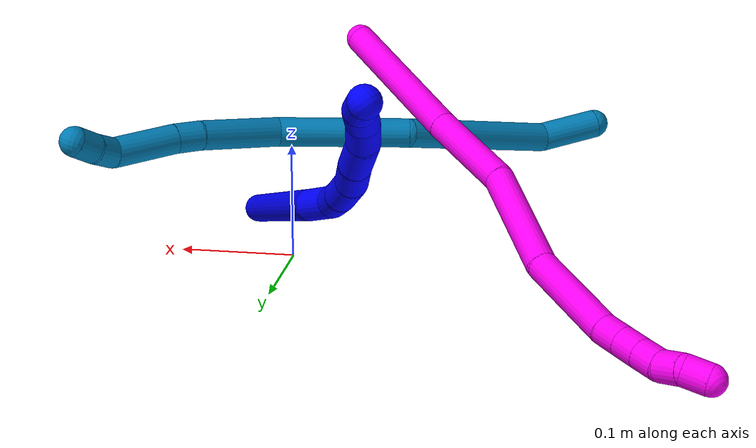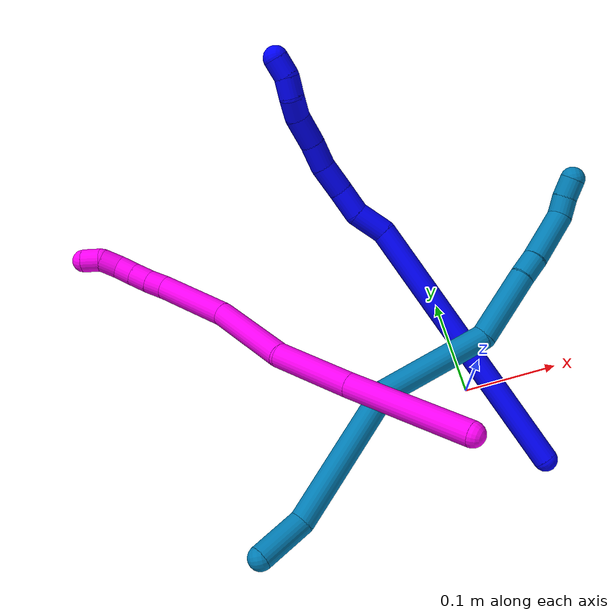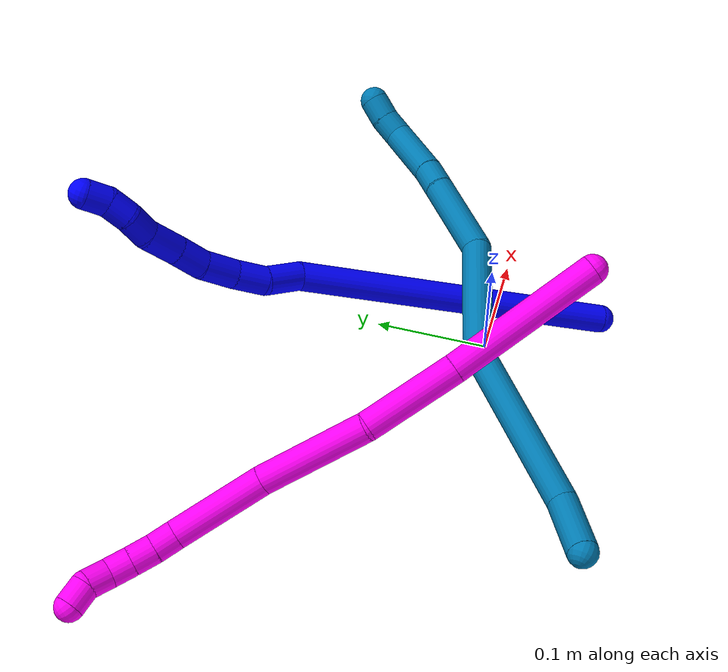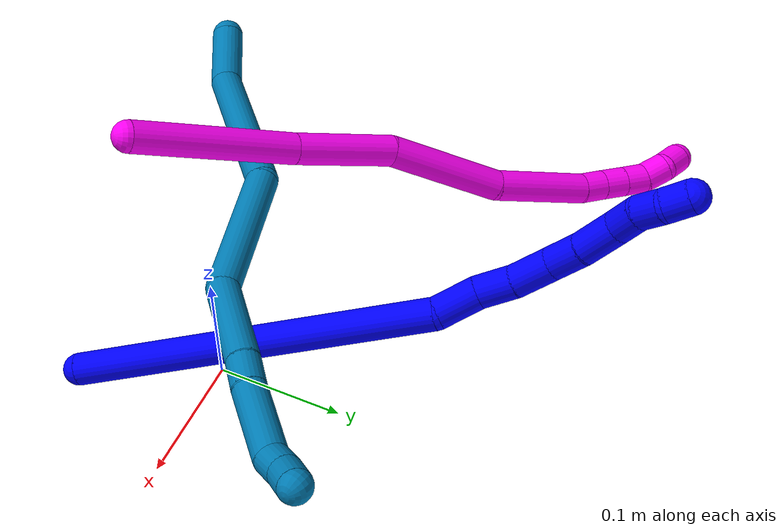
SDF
<sdf version="1.7">
 <world name="default">
  <model name="photoneo_s_sensor">
   <static>1</static>
   <pose>0 0 2 1.57079 1.57079 3.14159</pose>
   <link name="link">
    <inertial><mass>0.1</mass></inertial>
    <sensor name="sensor" type="depth">
     <update_rate>30</update_rate>
     <camera>
      <horizontal_fov>1.22</horizontal_fov>
      <image><width>1920</width><height>1200</height><format>B8G8R8</format></image>
      <clip><near>0.1</near><far>4</far></clip>
      <depth_camera><output>points</output></depth_camera>
     </camera>
     <plugin name="camera_plugin" filename="libgazebo_ros_depth_camera.so">
      <baseline>0.2</baseline>
      <alwaysOn>1</alwaysOn>
      <updateRate>0.0</updateRate>
      <cameraName>camera_ir</cameraName>
      <imageTopicName>/camera/color/image_raw</imageTopicName>
      <cameraInfoTopicName>/camera/color/camera_info</cameraInfoTopicName>
      <depthImageTopicName>/camera/depth/image_raw</depthImageTopicName>
      <depthImageCameraInfoTopicName>/camera/depth/camera_info</depthImageCameraInfoTopicName>
      <pointCloudTopicName>/camera/depth/points</pointCloudTopicName>
      <frameName>fr_optical</frameName>
      <pointCloudCutoff>0.1</pointCloudCutoff>
      <pointCloudCutoffMax>2.0</pointCloudCutoffMax>
      <distortionK1>0</distortionK1>
      <distortionK2>0</distortionK2>
      <distortionK3>0</distortionK3>
      <distortionT1>0</distortionT1>
      <distortionT2>0</distortionT2>
      <CxPrime>0</CxPrime>
      <Cx>0</Cx>
      <Cy>0</Cy>
      <focalLength>0</focalLength>
      <hackBaseline>0</hackBaseline>
     </plugin>
    </sensor>
   </link>
  </model>
  <model name="bin">
   <static>1</static>
   <link name="bottom">
    <collision name="collision-bottom">
     <pose>0 0 -0.01 0 -0 0</pose>
     <geometry><box><size>0.8 0.6 0.02</size></box></geometry>
     <surface>
      <friction><ode><mu>100</mu><mu2>100</mu2></ode></friction>
      <contact><collide_bitmask>65535</collide_bitmask></contact>
     </surface>
    </collision>
   </link>
   <link name="west_wall">
    <collision name="collision-west_wall">
     <pose>-0.41 0 0.1 0 -0 0</pose>
     <geometry><box><size>0.02 0.6 0.2</size></box></geometry>
     <surface>
      <friction><ode><mu>100</mu><mu2>100</mu2></ode></friction>
      <contact><collide_bitmask>65535</collide_bitmask></contact>
     </surface>
    </collision>
   </link>
   <link name="east_wall">
    <collision name="collision-east_wall">
     <pose>0.41 0 0.1 0 -0 0</pose>
     <geometry><box><size>0.02 0.6 0.2</size></box></geometry>
     <surface>
      <friction><ode><mu>100</mu><mu2>100</mu2></ode></friction>
      <contact><collide_bitmask>65535</collide_bitmask></contact>
     </surface>
    </collision>
   </link>
   <link name="south_wall">
    <collision name="collision-south_wall">
     <pose>0 -0.31 0.1 0 -0 0</pose>
     <geometry><box><size>0.8 0.02 0.2</size></box></geometry>
     <surface>
      <friction><ode><mu>100</mu><mu2>100</mu2></ode></friction>
      <contact><collide_bitmask>65535</collide_bitmask></contact>
     </surface>
    </collision>
   </link>
   <link name="north_wall">
    <collision name="collision-north_wall">
     <pose>0 0.31 0.1 0 -0 0</pose>
     <geometry><box><size>0.8 0.02 0.2</size></box></geometry>
     <surface>
      <friction><ode><mu>100</mu><mu2>100</mu2></ode></friction>
      <contact><collide_bitmask>65535</collide_bitmask></contact>
     </surface>
    </collision>
   </link>
  </model>
  <model name="1">
   <static>0</static>
   <link name="1">
    <collision name="collision-cylinder-e_1_1_4">
     <pose>-0.072375 0.121578 0.019388 -1.41266 -0.531449 0.456309</pose>
     <geometry><cylinder><radius>0.0125</radius><length>0.285624</length></cylinder></geometry>
     <surface>
      <friction><ode><mu>1.16</mu><mu2>1.16</mu2><slip1>0</slip1><slip2>0</slip2></ode></friction>
      <contact><ode><kp>1e+06</kp><kd>1</kd><max_vel>0</max_vel><min_depth>0.001</min_depth></ode></contact>
     </surface>
    </collision>
    <visual name="visual-cylinder-e_1_1_4">
     <pose>-0.072375 0.121578 0.019388 -1.41266 -0.531449 0.456309</pose>
     <geometry><cylinder><radius>0.0125</radius><length>0.285624</length></cylinder></geometry>
     <material><ambient>0 0 1 1</ambient></material>
    </visual>
    <collision name="collision-cylinder-e_2_4_5">
     <pose>-0.147457 0.259191 0.043291 -1.29633 -0.161121 0.122132</pose>
     <geometry><cylinder><radius>0.0125</radius><length>0.033753</length></cylinder></geometry>
     <surface>
      <friction><ode><mu>1.16</mu><mu2>1.16</mu2><slip1>0</slip1><slip2>0</slip2></ode></friction>
      <contact><ode><kp>1e+06</kp><kd>1</kd><max_vel>0</max_vel><min_depth>0.001</min_depth></ode></contact>
     </surface>
    </collision>
    <visual name="visual-cylinder-e_2_4_5">
     <pose>-0.147457 0.259191 0.043291 -1.29633 -0.161121 0.122132</pose>
     <geometry><cylinder><radius>0.0125</radius><length>0.033753</length></cylinder></geometry>
     <material><ambient>0 0 1 1</ambient></material>
    </visual>
    <collision name="collision-cylinder-e_3_5_6">
     <pose>-0.156152 0.288277 0.048171 -1.54286 -0.429947 0.418446</pose>
     <geometry><cylinder><radius>0.0125</radius><length>0.028729</length></cylinder></geometry>
     <surface>
      <friction><ode><mu>1.16</mu><mu2>1.16</mu2><slip1>0</slip1><slip2>0</slip2></ode></friction>
      <contact><ode><kp>1e+06</kp><kd>1</kd><max_vel>0</max_vel><min_depth>0.001</min_depth></ode></contact>
     </surface>
    </collision>
    <visual name="visual-cylinder-e_3_5_6">
     <pose>-0.156152 0.288277 0.048171 -1.54286 -0.429947 0.418446</pose>
     <geometry><cylinder><radius>0.0125</radius><length>0.028729</length></cylinder></geometry>
     <material><ambient>0 0 1 1</ambient></material>
    </visual>
    <collision name="collision-cylinder-e_4_6_7">
     <pose>-0.166821 0.316141 0.047307 -1.65355 -0.305166 0.331065</pose>
     <geometry><cylinder><radius>0.0125</radius><length>0.031165</length></cylinder></geometry>
     <surface>
      <friction><ode><mu>1.16</mu><mu2>1.16</mu2><slip1>0</slip1><slip2>0</slip2></ode></friction>
      <contact><ode><kp>1e+06</kp><kd>1</kd><max_vel>0</max_vel><min_depth>0.001</min_depth></ode></contact>
     </surface>
    </collision>
    <visual name="visual-cylinder-e_4_6_7">
     <pose>-0.166821 0.316141 0.047307 -1.65355 -0.305166 0.331065</pose>
     <geometry><cylinder><radius>0.0125</radius><length>0.031165</length></cylinder></geometry>
     <material><ambient>0 0 1 1</ambient></material>
    </visual>
    <collision name="collision-cylinder-e_5_7_8">
     <pose>-0.176123 0.342845 0.042401 -1.8707 -0.355399 0.477741</pose>
     <geometry><cylinder><radius>0.0125</radius><length>0.026556</length></cylinder></geometry>
     <surface>
      <friction><ode><mu>1.16</mu><mu2>1.16</mu2><slip1>0</slip1><slip2>0</slip2></ode></friction>
      <contact><ode><kp>1e+06</kp><kd>1</kd><max_vel>0</max_vel><min_depth>0.001</min_depth></ode></contact>
     </surface>
    </collision>
    <visual name="visual-cylinder-e_5_7_8">
     <pose>-0.176123 0.342845 0.042401 -1.8707 -0.355399 0.477741</pose>
     <geometry><cylinder><radius>0.0125</radius><length>0.026556</length></cylinder></geometry>
     <material><ambient>0 0 1 1</ambient></material>
    </visual>
    <collision name="collision-cylinder-e_6_8_9">
     <pose>-0.184571 0.369405 0.034535 -1.84896 -0.245862 0.32467</pose>
     <geometry><cylinder><radius>0.0125</radius><length>0.031454</length></cylinder></geometry>
     <surface>
      <friction><ode><mu>1.16</mu><mu2>1.16</mu2><slip1>0</slip1><slip2>0</slip2></ode></friction>
      <contact><ode><kp>1e+06</kp><kd>1</kd><max_vel>0</max_vel><min_depth>0.001</min_depth></ode></contact>
     </surface>
    </collision>
    <visual name="visual-cylinder-e_6_8_9">
     <pose>-0.184571 0.369405 0.034535 -1.84896 -0.245862 0.32467</pose>
     <geometry><cylinder><radius>0.0125</radius><length>0.031454</length></cylinder></geometry>
     <material><ambient>0 0 1 1</ambient></material>
    </visual>
    <collision name="collision-cylinder-e_7_9_10">
     <pose>-0.191551 0.393134 0.024973 -2.10607 -0.290761 0.503203</pose>
     <geometry><cylinder><radius>0.0125</radius><length>0.021992</length></cylinder></geometry>
     <surface>
      <friction><ode><mu>1.16</mu><mu2>1.16</mu2><slip1>0</slip1><slip2>0</slip2></ode></friction>
      <contact><ode><kp>1e+06</kp><kd>1</kd><max_vel>0</max_vel><min_depth>0.001</min_depth></ode></contact>
     </surface>
    </collision>
    <visual name="visual-cylinder-e_7_9_10">
     <pose>-0.191551 0.393134 0.024973 -2.10607 -0.290761 0.503203</pose>
     <geometry><cylinder><radius>0.0125</radius><length>0.021992</length></cylinder></geometry>
     <material><ambient>0 0 1 1</ambient></material>
    </visual>
    <collision name="collision-cylinder-e_8_10_11">
     <pose>-0.20004 0.410241 0.016055 -1.98582 -0.545467 0.810323</pose>
     <geometry><cylinder><radius>0.0125</radius><length>0.020571</length></cylinder></geometry>
     <surface>
      <friction><ode><mu>1.16</mu><mu2>1.16</mu2><slip1>0</slip1><slip2>0</slip2></ode></friction>
      <contact><ode><kp>1e+06</kp><kd>1</kd><max_vel>0</max_vel><min_depth>0.001</min_depth></ode></contact>
     </surface>
    </collision>
    <visual name="visual-cylinder-e_8_10_11">
     <pose>-0.20004 0.410241 0.016055 -1.98582 -0.545467 0.810323</pose>
     <geometry><cylinder><radius>0.0125</radius><length>0.020571</length></cylinder></geometry>
     <material><ambient>0 0 1 1</ambient></material>
    </visual>
    <collision name="collision-cylinder-e_9_11_2">
     <pose>-0.209674 0.427384 0.011907 -1.63696 -0.440567 0.469663</pose>
     <geometry><cylinder><radius>0.0125</radius><length>0.020157</length></cylinder></geometry>
     <surface>
      <friction><ode><mu>1.16</mu><mu2>1.16</mu2><slip1>0</slip1><slip2>0</slip2></ode></friction>
      <contact><ode><kp>1e+06</kp><kd>1</kd><max_vel>0</max_vel><min_depth>0.001</min_depth></ode></contact>
     </surface>
    </collision>
    <visual name="visual-cylinder-e_9_11_2">
     <pose>-0.209674 0.427384 0.011907 -1.63696 -0.440567 0.469663</pose>
     <geometry><cylinder><radius>0.0125</radius><length>0.020157</length></cylinder></geometry>
     <material><ambient>0 0 1 1</ambient></material>
    </visual>
    <collision name="collision-sphere-2">
     <pose>-0.213972 0.43648 0.011304 0 -0 0</pose>
     <geometry><sphere><radius>0.0125</radius></sphere></geometry>
     <surface>
      <friction><ode><mu>1.16</mu><mu2>1.16</mu2><slip1>0</slip1><slip2>0</slip2></ode></friction>
      <contact><ode><kp>1e+06</kp><kd>1</kd><max_vel>0</max_vel><min_depth>0.001</min_depth></ode></contact>
     </surface>
    </collision>
    <visual name="visual-sphere-2">
     <pose>-0.213972 0.43648 0.011304 0 -0 0</pose>
     <geometry><sphere><radius>0.0125</radius></sphere></geometry>
     <material><ambient>0 0 1 1</ambient></material>
    </visual>
    <collision name="collision-sphere-11">
     <pose>-0.205376 0.418288 0.012509 0 -0 0</pose>
     <geometry><sphere><radius>0.0125</radius></sphere></geometry>
     <surface>
      <friction><ode><mu>1.16</mu><mu2>1.16</mu2><slip1>0</slip1><slip2>0</slip2></ode></friction>
      <contact><ode><kp>1e+06</kp><kd>1</kd><max_vel>0</max_vel><min_depth>0.001</min_depth></ode></contact>
     </surface>
    </collision>
    <visual name="visual-sphere-11">
     <pose>-0.205376 0.418288 0.012509 0 -0 0</pose>
     <geometry><sphere><radius>0.0125</radius></sphere></geometry>
     <material><ambient>0 0 1 1</ambient></material>
    </visual>
    <collision name="collision-sphere-10">
     <pose>-0.194704 0.402195 0.0196 0 -0 0</pose>
     <geometry><sphere><radius>0.0125</radius></sphere></geometry>
     <surface>
      <friction><ode><mu>1.16</mu><mu2>1.16</mu2><slip1>0</slip1><slip2>0</slip2></ode></friction>
      <contact><ode><kp>1e+06</kp><kd>1</kd><max_vel>0</max_vel><min_depth>0.001</min_depth></ode></contact>
     </surface>
    </collision>
    <visual name="visual-sphere-10">
     <pose>-0.194704 0.402195 0.0196 0 -0 0</pose>
     <geometry><sphere><radius>0.0125</radius></sphere></geometry>
     <material><ambient>0 0 1 1</ambient></material>
    </visual>
    <collision name="collision-sphere-9">
     <pose>-0.188399 0.384073 0.030347 0 -0 0</pose>
     <geometry><sphere><radius>0.0125</radius></sphere></geometry>
     <surface>
      <friction><ode><mu>1.16</mu><mu2>1.16</mu2><slip1>0</slip1><slip2>0</slip2></ode></friction>
      <contact><ode><kp>1e+06</kp><kd>1</kd><max_vel>0</max_vel><min_depth>0.001</min_depth></ode></contact>
     </surface>
    </collision>
    <visual name="visual-sphere-9">
     <pose>-0.188399 0.384073 0.030347 0 -0 0</pose>
     <geometry><sphere><radius>0.0125</radius></sphere></geometry>
     <material><ambient>0 0 1 1</ambient></material>
    </visual>
    <collision name="collision-sphere-4">
     <pose>-0.144749 0.243156 0.038777 0 -0 0</pose>
     <geometry><sphere><radius>0.0125</radius></sphere></geometry>
     <surface>
      <friction><ode><mu>1.16</mu><mu2>1.16</mu2><slip1>0</slip1><slip2>0</slip2></ode></friction>
      <contact><ode><kp>1e+06</kp><kd>1</kd><max_vel>0</max_vel><min_depth>0.001</min_depth></ode></contact>
     </surface>
    </collision>
    <visual name="visual-sphere-4">
     <pose>-0.144749 0.243156 0.038777 0 -0 0</pose>
     <geometry><sphere><radius>0.0125</radius></sphere></geometry>
     <material><ambient>0 0 1 1</ambient></material>
    </visual>
    <collision name="collision-sphere-1">
     <geometry><sphere><radius>0.0125</radius></sphere></geometry>
     <surface>
      <friction><ode><mu>1.16</mu><mu2>1.16</mu2><slip1>0</slip1><slip2>0</slip2></ode></friction>
      <contact><ode><kp>1e+06</kp><kd>1</kd><max_vel>0</max_vel><min_depth>0.001</min_depth></ode></contact>
     </surface>
    </collision>
    <visual name="visual-sphere-1">
     <geometry><sphere><radius>0.0125</radius></sphere></geometry>
     <material><ambient>0 0 1 1</ambient></material>
    </visual>
    <collision name="collision-sphere-8">
     <pose>-0.180743 0.354738 0.038724 0 -0 0</pose>
     <geometry><sphere><radius>0.0125</radius></sphere></geometry>
     <surface>
      <friction><ode><mu>1.16</mu><mu2>1.16</mu2><slip1>0</slip1><slip2>0</slip2></ode></friction>
      <contact><ode><kp>1e+06</kp><kd>1</kd><max_vel>0</max_vel><min_depth>0.001</min_depth></ode></contact>
     </surface>
    </collision>
    <visual name="visual-sphere-8">
     <pose>-0.180743 0.354738 0.038724 0 -0 0</pose>
     <geometry><sphere><radius>0.0125</radius></sphere></geometry>
     <material><ambient>0 0 1 1</ambient></material>
    </visual>
    <collision name="collision-sphere-5">
     <pose>-0.150164 0.275225 0.047806 0 -0 0</pose>
     <geometry><sphere><radius>0.0125</radius></sphere></geometry>
     <surface>
      <friction><ode><mu>1.16</mu><mu2>1.16</mu2><slip1>0</slip1><slip2>0</slip2></ode></friction>
      <contact><ode><kp>1e+06</kp><kd>1</kd><max_vel>0</max_vel><min_depth>0.001</min_depth></ode></contact>
     </surface>
    </collision>
    <visual name="visual-sphere-5">
     <pose>-0.150164 0.275225 0.047806 0 -0 0</pose>
     <geometry><sphere><radius>0.0125</radius></sphere></geometry>
     <material><ambient>0 0 1 1</ambient></material>
    </visual>
    <collision name="collision-sphere-6">
     <pose>-0.162139 0.30133 0.048536 0 -0 0</pose>
     <geometry><sphere><radius>0.0125</radius></sphere></geometry>
     <surface>
      <friction><ode><mu>1.16</mu><mu2>1.16</mu2><slip1>0</slip1><slip2>0</slip2></ode></friction>
      <contact><ode><kp>1e+06</kp><kd>1</kd><max_vel>0</max_vel><min_depth>0.001</min_depth></ode></contact>
     </surface>
    </collision>
    <visual name="visual-sphere-6">
     <pose>-0.162139 0.30133 0.048536 0 -0 0</pose>
     <geometry><sphere><radius>0.0125</radius></sphere></geometry>
     <material><ambient>0 0 1 1</ambient></material>
    </visual>
    <collision name="collision-sphere-7">
     <pose>-0.171503 0.330953 0.046079 0 -0 0</pose>
     <geometry><sphere><radius>0.0125</radius></sphere></geometry>
     <surface>
      <friction><ode><mu>1.16</mu><mu2>1.16</mu2><slip1>0</slip1><slip2>0</slip2></ode></friction>
      <contact><ode><kp>1e+06</kp><kd>1</kd><max_vel>0</max_vel><min_depth>0.001</min_depth></ode></contact>
     </surface>
    </collision>
    <visual name="visual-sphere-7">
     <pose>-0.171503 0.330953 0.046079 0 -0 0</pose>
     <geometry><sphere><radius>0.0125</radius></sphere></geometry>
     <material><ambient>0 0 1 1</ambient></material>
    </visual>
    <inertial>
     <pose>-0.116741 0.216063 0.026378 0 -0 0</pose>
     <mass>0.5</mass>
     <inertia>
      <ixx>0.002264</ixx>
      <ixy>0</ixy>
      <ixz>0</ixz>
      <iyy>0.001491</iyy>
      <iyz>0</iyz>
      <izz>-0.000686</izz>
     </inertia>
    </inertial>
   </link>
   <pose>0.051925 -0.095029 0.011478 2.50483 -0.176427 -2.13163</pose>
  </model>
  <model name="9">
   <static>0</static>
   <link name="9">
    <collision name="collision-cylinder-e_1_1_4">
     <pose>0.017191 0.000279 0.019401 -0.014361 0.725044 -0.005447</pose>
     <geometry><cylinder><radius>0.0125</radius><length>0.051846</length></cylinder></geometry>
     <surface>
      <friction><ode><mu>1.16</mu><mu2>1.16</mu2><slip1>0</slip1><slip2>0</slip2></ode></friction>
      <contact><ode><kp>1e+06</kp><kd>1</kd><max_vel>0</max_vel><min_depth>0.001</min_depth></ode></contact>
     </surface>
    </collision>
    <visual name="visual-cylinder-e_1_1_4">
     <pose>0.017191 0.000279 0.019401 -0.014361 0.725044 -0.005447</pose>
     <geometry><cylinder><radius>0.0125</radius><length>0.051846</length></cylinder></geometry>
     <material><ambient>0 0.490196 0.709804 1</ambient></material>
    </visual>
    <collision name="collision-cylinder-e_2_4_5">
     <pose>0.078442 0.030012 0.087162 -0.54706 0.661237 -0.191995</pose>
     <geometry><cylinder><radius>0.0125</radius><length>0.143492</length></cylinder></geometry>
     <surface>
      <friction><ode><mu>1.16</mu><mu2>1.16</mu2><slip1>0</slip1><slip2>0</slip2></ode></friction>
      <contact><ode><kp>1e+06</kp><kd>1</kd><max_vel>0</max_vel><min_depth>0.001</min_depth></ode></contact>
     </surface>
    </collision>
    <visual name="visual-cylinder-e_2_4_5">
     <pose>0.078442 0.030012 0.087162 -0.54706 0.661237 -0.191995</pose>
     <geometry><cylinder><radius>0.0125</radius><length>0.143492</length></cylinder></geometry>
     <material><ambient>0 0.490196 0.709804 1</ambient></material>
    </visual>
    <collision name="collision-cylinder-e_3_5_6">
     <pose>0.145587 0.061649 0.186639 -0.042663 0.423878 -0.009181</pose>
     <geometry><cylinder><radius>0.0125</radius><length>0.112262</length></cylinder></geometry>
     <surface>
      <friction><ode><mu>1.16</mu><mu2>1.16</mu2><slip1>0</slip1><slip2>0</slip2></ode></friction>
      <contact><ode><kp>1e+06</kp><kd>1</kd><max_vel>0</max_vel><min_depth>0.001</min_depth></ode></contact>
     </surface>
    </collision>
    <visual name="visual-cylinder-e_3_5_6">
     <pose>0.145587 0.061649 0.186639 -0.042663 0.423878 -0.009181</pose>
     <geometry><cylinder><radius>0.0125</radius><length>0.112262</length></cylinder></geometry>
     <material><ambient>0 0.490196 0.709804 1</ambient></material>
    </visual>
    <collision name="collision-cylinder-e_4_6_7">
     <pose>0.192596 0.076651 0.262094 -0.484808 0.715786 -0.18443</pose>
     <geometry><cylinder><radius>0.0125</radius><length>0.072909</length></cylinder></geometry>
     <surface>
      <friction><ode><mu>1.16</mu><mu2>1.16</mu2><slip1>0</slip1><slip2>0</slip2></ode></friction>
      <contact><ode><kp>1e+06</kp><kd>1</kd><max_vel>0</max_vel><min_depth>0.001</min_depth></ode></contact>
     </surface>
    </collision>
    <visual name="visual-cylinder-e_4_6_7">
     <pose>0.192596 0.076651 0.262094 -0.484808 0.715786 -0.18443</pose>
     <geometry><cylinder><radius>0.0125</radius><length>0.072909</length></cylinder></geometry>
     <material><ambient>0 0.490196 0.709804 1</ambient></material>
    </visual>
    <collision name="collision-cylinder-e_5_7_8">
     <pose>0.224545 0.092519 0.294316 -0.368933 0.7596 -0.14869</pose>
     <geometry><cylinder><radius>0.0125</radius><length>0.023313</length></cylinder></geometry>
     <surface>
      <friction><ode><mu>1.16</mu><mu2>1.16</mu2><slip1>0</slip1><slip2>0</slip2></ode></friction>
      <contact><ode><kp>1e+06</kp><kd>1</kd><max_vel>0</max_vel><min_depth>0.001</min_depth></ode></contact>
     </surface>
    </collision>
    <visual name="visual-cylinder-e_5_7_8">
     <pose>0.224545 0.092519 0.294316 -0.368933 0.7596 -0.14869</pose>
     <geometry><cylinder><radius>0.0125</radius><length>0.023313</length></cylinder></geometry>
     <material><ambient>0 0.490196 0.709804 1</ambient></material>
    </visual>
    <collision name="collision-cylinder-e_6_8_9">
     <pose>0.253896 0.102488 0.319092 -0.38885 0.862773 -0.180783</pose>
     <geometry><cylinder><radius>0.0125</radius><length>0.056142</length></cylinder></geometry>
     <surface>
      <friction><ode><mu>1.16</mu><mu2>1.16</mu2><slip1>0</slip1><slip2>0</slip2></ode></friction>
      <contact><ode><kp>1e+06</kp><kd>1</kd><max_vel>0</max_vel><min_depth>0.001</min_depth></ode></contact>
     </surface>
    </collision>
    <visual name="visual-cylinder-e_6_8_9">
     <pose>0.253896 0.102488 0.319092 -0.38885 0.862773 -0.180783</pose>
     <geometry><cylinder><radius>0.0125</radius><length>0.056142</length></cylinder></geometry>
     <material><ambient>0 0.490196 0.709804 1</ambient></material>
    </visual>
    <collision name="collision-cylinder-e_7_9_10">
     <pose>0.28084 0.11627 0.340641 -0.974541 0.595661 -0.322485</pose>
     <geometry><cylinder><radius>0.0125</radius><length>0.020033</length></cylinder></geometry>
     <surface>
      <friction><ode><mu>1.16</mu><mu2>1.16</mu2><slip1>0</slip1><slip2>0</slip2></ode></friction>
      <contact><ode><kp>1e+06</kp><kd>1</kd><max_vel>0</max_vel><min_depth>0.001</min_depth></ode></contact>
     </surface>
    </collision>
    <visual name="visual-cylinder-e_7_9_10">
     <pose>0.28084 0.11627 0.340641 -0.974541 0.595661 -0.322485</pose>
     <geometry><cylinder><radius>0.0125</radius><length>0.020033</length></cylinder></geometry>
     <material><ambient>0 0.490196 0.709804 1</ambient></material>
    </visual>
    <collision name="collision-cylinder-e_8_10_2">
     <pose>0.290899 0.129989 0.351065 -0.871559 0.459924 -0.217156</pose>
     <geometry><cylinder><radius>0.0125</radius><length>0.020002</length></cylinder></geometry>
     <surface>
      <friction><ode><mu>1.16</mu><mu2>1.16</mu2><slip1>0</slip1><slip2>0</slip2></ode></friction>
      <contact><ode><kp>1e+06</kp><kd>1</kd><max_vel>0</max_vel><min_depth>0.001</min_depth></ode></contact>
     </surface>
    </collision>
    <visual name="visual-cylinder-e_8_10_2">
     <pose>0.290899 0.129989 0.351065 -0.871559 0.459924 -0.217156</pose>
     <geometry><cylinder><radius>0.0125</radius><length>0.020002</length></cylinder></geometry>
     <material><ambient>0 0.490196 0.709804 1</ambient></material>
    </visual>
    <collision name="collision-sphere-2">
     <pose>0.295338 0.136848 0.356833 0 -0 0</pose>
     <geometry><sphere><radius>0.0125</radius></sphere></geometry>
     <surface>
      <friction><ode><mu>1.16</mu><mu2>1.16</mu2><slip1>0</slip1><slip2>0</slip2></ode></friction>
      <contact><ode><kp>1e+06</kp><kd>1</kd><max_vel>0</max_vel><min_depth>0.001</min_depth></ode></contact>
     </surface>
    </collision>
    <visual name="visual-sphere-2">
     <pose>0.295338 0.136848 0.356833 0 -0 0</pose>
     <geometry><sphere><radius>0.0125</radius></sphere></geometry>
     <material><ambient>0 0.490196 0.709804 1</ambient></material>
    </visual>
    <collision name="collision-sphere-10">
     <pose>0.28646 0.123131 0.345297 0 -0 0</pose>
     <geometry><sphere><radius>0.0125</radius></sphere></geometry>
     <surface>
      <friction><ode><mu>1.16</mu><mu2>1.16</mu2><slip1>0</slip1><slip2>0</slip2></ode></friction>
      <contact><ode><kp>1e+06</kp><kd>1</kd><max_vel>0</max_vel><min_depth>0.001</min_depth></ode></contact>
     </surface>
    </collision>
    <visual name="visual-sphere-10">
     <pose>0.28646 0.123131 0.345297 0 -0 0</pose>
     <geometry><sphere><radius>0.0125</radius></sphere></geometry>
     <material><ambient>0 0.490196 0.709804 1</ambient></material>
    </visual>
    <collision name="collision-sphere-9">
     <pose>0.27522 0.109409 0.335985 0 -0 0</pose>
     <geometry><sphere><radius>0.0125</radius></sphere></geometry>
     <surface>
      <friction><ode><mu>1.16</mu><mu2>1.16</mu2><slip1>0</slip1><slip2>0</slip2></ode></friction>
      <contact><ode><kp>1e+06</kp><kd>1</kd><max_vel>0</max_vel><min_depth>0.001</min_depth></ode></contact>
     </surface>
    </collision>
    <visual name="visual-sphere-9">
     <pose>0.27522 0.109409 0.335985 0 -0 0</pose>
     <geometry><sphere><radius>0.0125</radius></sphere></geometry>
     <material><ambient>0 0.490196 0.709804 1</ambient></material>
    </visual>
    <collision name="collision-sphere-4">
     <pose>0.034383 0.000557 0.038801 0 -0 0</pose>
     <geometry><sphere><radius>0.0125</radius></sphere></geometry>
     <surface>
      <friction><ode><mu>1.16</mu><mu2>1.16</mu2><slip1>0</slip1><slip2>0</slip2></ode></friction>
      <contact><ode><kp>1e+06</kp><kd>1</kd><max_vel>0</max_vel><min_depth>0.001</min_depth></ode></contact>
     </surface>
    </collision>
    <visual name="visual-sphere-4">
     <pose>0.034383 0.000557 0.038801 0 -0 0</pose>
     <geometry><sphere><radius>0.0125</radius></sphere></geometry>
     <material><ambient>0 0.490196 0.709804 1</ambient></material>
    </visual>
    <collision name="collision-sphere-1">
     <geometry><sphere><radius>0.0125</radius></sphere></geometry>
     <surface>
      <friction><ode><mu>1.16</mu><mu2>1.16</mu2><slip1>0</slip1><slip2>0</slip2></ode></friction>
      <contact><ode><kp>1e+06</kp><kd>1</kd><max_vel>0</max_vel><min_depth>0.001</min_depth></ode></contact>
     </surface>
    </collision>
    <visual name="visual-sphere-1">
     <geometry><sphere><radius>0.0125</radius></sphere></geometry>
     <material><ambient>0 0.490196 0.709804 1</ambient></material>
    </visual>
    <collision name="collision-sphere-8">
     <pose>0.232572 0.095567 0.302199 0 -0 0</pose>
     <geometry><sphere><radius>0.0125</radius></sphere></geometry>
     <surface>
      <friction><ode><mu>1.16</mu><mu2>1.16</mu2><slip1>0</slip1><slip2>0</slip2></ode></friction>
      <contact><ode><kp>1e+06</kp><kd>1</kd><max_vel>0</max_vel><min_depth>0.001</min_depth></ode></contact>
     </surface>
    </collision>
    <visual name="visual-sphere-8">
     <pose>0.232572 0.095567 0.302199 0 -0 0</pose>
     <geometry><sphere><radius>0.0125</radius></sphere></geometry>
     <material><ambient>0 0.490196 0.709804 1</ambient></material>
    </visual>
    <collision name="collision-sphere-5">
     <pose>0.122501 0.059467 0.135523 0 -0 0</pose>
     <geometry><sphere><radius>0.0125</radius></sphere></geometry>
     <surface>
      <friction><ode><mu>1.16</mu><mu2>1.16</mu2><slip1>0</slip1><slip2>0</slip2></ode></friction>
      <contact><ode><kp>1e+06</kp><kd>1</kd><max_vel>0</max_vel><min_depth>0.001</min_depth></ode></contact>
     </surface>
    </collision>
    <visual name="visual-sphere-5">
     <pose>0.122501 0.059467 0.135523 0 -0 0</pose>
     <geometry><sphere><radius>0.0125</radius></sphere></geometry>
     <material><ambient>0 0.490196 0.709804 1</ambient></material>
    </visual>
    <collision name="collision-sphere-6">
     <pose>0.168674 0.063831 0.237756 0 -0 0</pose>
     <geometry><sphere><radius>0.0125</radius></sphere></geometry>
     <surface>
      <friction><ode><mu>1.16</mu><mu2>1.16</mu2><slip1>0</slip1><slip2>0</slip2></ode></friction>
      <contact><ode><kp>1e+06</kp><kd>1</kd><max_vel>0</max_vel><min_depth>0.001</min_depth></ode></contact>
     </surface>
    </collision>
    <visual name="visual-sphere-6">
     <pose>0.168674 0.063831 0.237756 0 -0 0</pose>
     <geometry><sphere><radius>0.0125</radius></sphere></geometry>
     <material><ambient>0 0.490196 0.709804 1</ambient></material>
    </visual>
    <collision name="collision-sphere-7">
     <pose>0.216518 0.089471 0.286432 0 -0 0</pose>
     <geometry><sphere><radius>0.0125</radius></sphere></geometry>
     <surface>
      <friction><ode><mu>1.16</mu><mu2>1.16</mu2><slip1>0</slip1><slip2>0</slip2></ode></friction>
      <contact><ode><kp>1e+06</kp><kd>1</kd><max_vel>0</max_vel><min_depth>0.001</min_depth></ode></contact>
     </surface>
    </collision>
    <visual name="visual-sphere-7">
     <pose>0.216518 0.089471 0.286432 0 -0 0</pose>
     <geometry><sphere><radius>0.0125</radius></sphere></geometry>
     <material><ambient>0 0.490196 0.709804 1</ambient></material>
    </visual>
    <inertial>
     <pose>0.146933 0.059341 0.184393 0 -0 0</pose>
     <mass>0.5</mass>
     <inertia>
      <ixx>0.000334</ixx>
      <ixy>0</ixy>
      <ixz>0</ixz>
      <iyy>0.000379</iyy>
      <iyz>0</iyz>
      <izz>-0.000352</izz>
     </inertia>
    </inertial>
   </link>
   <pose>-0.253628 -0.124386 0.097812 1.28454 0.562466 1.27611</pose>
  </model>
  <model name="10">
   <static>0</static>
   <link name="10">
    <collision name="collision-cylinder-e_1_1_4">
     <pose>-0.002745 -1.9e-05 0.066911 0.000277 -0.040996 -6e-06</pose>
     <geometry><cylinder><radius>0.0125</radius><length>0.133934</length></cylinder></geometry>
     <surface>
      <friction><ode><mu>1.16</mu><mu2>1.16</mu2><slip1>0</slip1><slip2>0</slip2></ode></friction>
      <contact><ode><kp>1e+06</kp><kd>1</kd><max_vel>0</max_vel><min_depth>0.001</min_depth></ode></contact>
     </surface>
    </collision>
    <visual name="visual-cylinder-e_1_1_4">
     <pose>-0.002745 -1.9e-05 0.066911 0.000277 -0.040996 -6e-06</pose>
     <geometry><cylinder><radius>0.0125</radius><length>0.133934</length></cylinder></geometry>
     <material><ambient>1 0 0.964706 1</ambient></material>
    </visual>
    <collision name="collision-cylinder-e_2_4_5">
     <pose>-0.005026 0.001824 0.175342 -0.044791 0.011152 -0.00025</pose>
     <geometry><cylinder><radius>0.0125</radius><length>0.083128</length></cylinder></geometry>
     <surface>
      <friction><ode><mu>1.16</mu><mu2>1.16</mu2><slip1>0</slip1><slip2>0</slip2></ode></friction>
      <contact><ode><kp>1e+06</kp><kd>1</kd><max_vel>0</max_vel><min_depth>0.001</min_depth></ode></contact>
     </surface>
    </collision>
    <visual name="visual-cylinder-e_2_4_5">
     <pose>-0.005026 0.001824 0.175342 -0.044791 0.011152 -0.00025</pose>
     <geometry><cylinder><radius>0.0125</radius><length>0.083128</length></cylinder></geometry>
     <material><ambient>1 0 0.964706 1</ambient></material>
    </visual>
    <collision name="collision-cylinder-e_3_5_6">
     <pose>-0.01713 0.00962 0.26365 -0.126173 -0.260426 0.016544</pose>
     <geometry><cylinder><radius>0.0125</radius><length>0.097617</length></cylinder></geometry>
     <surface>
      <friction><ode><mu>1.16</mu><mu2>1.16</mu2><slip1>0</slip1><slip2>0</slip2></ode></friction>
      <contact><ode><kp>1e+06</kp><kd>1</kd><max_vel>0</max_vel><min_depth>0.001</min_depth></ode></contact>
     </surface>
    </collision>
    <visual name="visual-cylinder-e_3_5_6">
     <pose>-0.01713 0.00962 0.26365 -0.126173 -0.260426 0.016544</pose>
     <geometry><cylinder><radius>0.0125</radius><length>0.097617</length></cylinder></geometry>
     <material><ambient>1 0 0.964706 1</ambient></material>
    </visual>
    <collision name="collision-cylinder-e_4_6_7">
     <pose>-0.030189 0.018225 0.351552 -0.064872 -0.011923 0.000387</pose>
     <geometry><cylinder><radius>0.0125</radius><length>0.082408</length></cylinder></geometry>
     <surface>
      <friction><ode><mu>1.16</mu><mu2>1.16</mu2><slip1>0</slip1><slip2>0</slip2></ode></friction>
      <contact><ode><kp>1e+06</kp><kd>1</kd><max_vel>0</max_vel><min_depth>0.001</min_depth></ode></contact>
     </surface>
    </collision>
    <visual name="visual-cylinder-e_4_6_7">
     <pose>-0.030189 0.018225 0.351552 -0.064872 -0.011923 0.000387</pose>
     <geometry><cylinder><radius>0.0125</radius><length>0.082408</length></cylinder></geometry>
     <material><ambient>1 0 0.964706 1</ambient></material>
    </visual>
    <collision name="collision-cylinder-e_5_7_8">
     <pose>-0.029013 0.02156 0.402693 -0.066115 0.164434 -0.00545</pose>
     <geometry><cylinder><radius>0.0125</radius><length>0.020371</length></cylinder></geometry>
     <surface>
      <friction><ode><mu>1.16</mu><mu2>1.16</mu2><slip1>0</slip1><slip2>0</slip2></ode></friction>
      <contact><ode><kp>1e+06</kp><kd>1</kd><max_vel>0</max_vel><min_depth>0.001</min_depth></ode></contact>
     </surface>
    </collision>
    <visual name="visual-cylinder-e_5_7_8">
     <pose>-0.029013 0.02156 0.402693 -0.066115 0.164434 -0.00545</pose>
     <geometry><cylinder><radius>0.0125</radius><length>0.020371</length></cylinder></geometry>
     <material><ambient>1 0 0.964706 1</ambient></material>
    </visual>
    <collision name="collision-cylinder-e_6_8_9">
     <pose>-0.02563 0.023588 0.422697 -0.135846 0.168732 -0.011506</pose>
     <geometry><cylinder><radius>0.0125</radius><length>0.020431</length></cylinder></geometry>
     <surface>
      <friction><ode><mu>1.16</mu><mu2>1.16</mu2><slip1>0</slip1><slip2>0</slip2></ode></friction>
      <contact><ode><kp>1e+06</kp><kd>1</kd><max_vel>0</max_vel><min_depth>0.001</min_depth></ode></contact>
     </surface>
    </collision>
    <visual name="visual-cylinder-e_6_8_9">
     <pose>-0.02563 0.023588 0.422697 -0.135846 0.168732 -0.011506</pose>
     <geometry><cylinder><radius>0.0125</radius><length>0.020431</length></cylinder></geometry>
     <material><ambient>1 0 0.964706 1</ambient></material>
    </visual>
    <collision name="collision-cylinder-e_7_9_10">
     <pose>-0.022088 0.026537 0.442535 -0.159375 0.180917 -0.014487</pose>
     <geometry><cylinder><radius>0.0125</radius><length>0.020305</length></cylinder></geometry>
     <surface>
      <friction><ode><mu>1.16</mu><mu2>1.16</mu2><slip1>0</slip1><slip2>0</slip2></ode></friction>
      <contact><ode><kp>1e+06</kp><kd>1</kd><max_vel>0</max_vel><min_depth>0.001</min_depth></ode></contact>
     </surface>
    </collision>
    <visual name="visual-cylinder-e_7_9_10">
     <pose>-0.022088 0.026537 0.442535 -0.159375 0.180917 -0.014487</pose>
     <geometry><cylinder><radius>0.0125</radius><length>0.020305</length></cylinder></geometry>
     <material><ambient>1 0 0.964706 1</ambient></material>
    </visual>
    <collision name="collision-cylinder-e_8_10_11">
     <pose>-0.015238 0.030114 0.461409 -0.217536 0.498356 -0.055561</pose>
     <geometry><cylinder><radius>0.0125</radius><length>0.021019</length></cylinder></geometry>
     <surface>
      <friction><ode><mu>1.16</mu><mu2>1.16</mu2><slip1>0</slip1><slip2>0</slip2></ode></friction>
      <contact><ode><kp>1e+06</kp><kd>1</kd><max_vel>0</max_vel><min_depth>0.001</min_depth></ode></contact>
     </surface>
    </collision>
    <visual name="visual-cylinder-e_8_10_11">
     <pose>-0.015238 0.030114 0.461409 -0.217536 0.498356 -0.055561</pose>
     <geometry><cylinder><radius>0.0125</radius><length>0.021019</length></cylinder></geometry>
     <material><ambient>1 0 0.964706 1</ambient></material>
    </visual>
    <collision name="collision-cylinder-e_9_11_2">
     <pose>-0.006308 0.029281 0.479629 0.297803 0.385356 0.058518</pose>
     <geometry><cylinder><radius>0.0125</radius><length>0.020785</length></cylinder></geometry>
     <surface>
      <friction><ode><mu>1.16</mu><mu2>1.16</mu2><slip1>0</slip1><slip2>0</slip2></ode></friction>
      <contact><ode><kp>1e+06</kp><kd>1</kd><max_vel>0</max_vel><min_depth>0.001</min_depth></ode></contact>
     </surface>
    </collision>
    <visual name="visual-cylinder-e_9_11_2">
     <pose>-0.006308 0.029281 0.479629 0.297803 0.385356 0.058518</pose>
     <geometry><cylinder><radius>0.0125</radius><length>0.020785</length></cylinder></geometry>
     <material><ambient>1 0 0.964706 1</ambient></material>
    </visual>
    <collision name="collision-sphere-2">
     <pose>-0.002401 0.026455 0.488836 0 -0 0</pose>
     <geometry><sphere><radius>0.0125</radius></sphere></geometry>
     <surface>
      <friction><ode><mu>1.16</mu><mu2>1.16</mu2><slip1>0</slip1><slip2>0</slip2></ode></friction>
      <contact><ode><kp>1e+06</kp><kd>1</kd><max_vel>0</max_vel><min_depth>0.001</min_depth></ode></contact>
     </surface>
    </collision>
    <visual name="visual-sphere-2">
     <pose>-0.002401 0.026455 0.488836 0 -0 0</pose>
     <geometry><sphere><radius>0.0125</radius></sphere></geometry>
     <material><ambient>1 0 0.964706 1</ambient></material>
    </visual>
    <collision name="collision-sphere-11">
     <pose>-0.010214 0.032106 0.470422 0 -0 0</pose>
     <geometry><sphere><radius>0.0125</radius></sphere></geometry>
     <surface>
      <friction><ode><mu>1.16</mu><mu2>1.16</mu2><slip1>0</slip1><slip2>0</slip2></ode></friction>
      <contact><ode><kp>1e+06</kp><kd>1</kd><max_vel>0</max_vel><min_depth>0.001</min_depth></ode></contact>
     </surface>
    </collision>
    <visual name="visual-sphere-11">
     <pose>-0.010214 0.032106 0.470422 0 -0 0</pose>
     <geometry><sphere><radius>0.0125</radius></sphere></geometry>
     <material><ambient>1 0 0.964706 1</ambient></material>
    </visual>
    <collision name="collision-sphere-10">
     <pose>-0.020261 0.028122 0.452395 0 -0 0</pose>
     <geometry><sphere><radius>0.0125</radius></sphere></geometry>
     <surface>
      <friction><ode><mu>1.16</mu><mu2>1.16</mu2><slip1>0</slip1><slip2>0</slip2></ode></friction>
      <contact><ode><kp>1e+06</kp><kd>1</kd><max_vel>0</max_vel><min_depth>0.001</min_depth></ode></contact>
     </surface>
    </collision>
    <visual name="visual-sphere-10">
     <pose>-0.020261 0.028122 0.452395 0 -0 0</pose>
     <geometry><sphere><radius>0.0125</radius></sphere></geometry>
     <material><ambient>1 0 0.964706 1</ambient></material>
    </visual>
    <collision name="collision-sphere-9">
     <pose>-0.023915 0.024952 0.432674 0 -0 0</pose>
     <geometry><sphere><radius>0.0125</radius></sphere></geometry>
     <surface>
      <friction><ode><mu>1.16</mu><mu2>1.16</mu2><slip1>0</slip1><slip2>0</slip2></ode></friction>
      <contact><ode><kp>1e+06</kp><kd>1</kd><max_vel>0</max_vel><min_depth>0.001</min_depth></ode></contact>
     </surface>
    </collision>
    <visual name="visual-sphere-9">
     <pose>-0.023915 0.024952 0.432674 0 -0 0</pose>
     <geometry><sphere><radius>0.0125</radius></sphere></geometry>
     <material><ambient>1 0 0.964706 1</ambient></material>
    </visual>
    <collision name="collision-sphere-4">
     <pose>-0.005489 -3.7e-05 0.133822 0 -0 0</pose>
     <geometry><sphere><radius>0.0125</radius></sphere></geometry>
     <surface>
      <friction><ode><mu>1.16</mu><mu2>1.16</mu2><slip1>0</slip1><slip2>0</slip2></ode></friction>
      <contact><ode><kp>1e+06</kp><kd>1</kd><max_vel>0</max_vel><min_depth>0.001</min_depth></ode></contact>
     </surface>
    </collision>
    <visual name="visual-sphere-4">
     <pose>-0.005489 -3.7e-05 0.133822 0 -0 0</pose>
     <geometry><sphere><radius>0.0125</radius></sphere></geometry>
     <material><ambient>1 0 0.964706 1</ambient></material>
    </visual>
    <collision name="collision-sphere-1">
     <geometry><sphere><radius>0.0125</radius></sphere></geometry>
     <surface>
      <friction><ode><mu>1.16</mu><mu2>1.16</mu2><slip1>0</slip1><slip2>0</slip2></ode></friction>
      <contact><ode><kp>1e+06</kp><kd>1</kd><max_vel>0</max_vel><min_depth>0.001</min_depth></ode></contact>
     </surface>
    </collision>
    <visual name="visual-sphere-1">
     <geometry><sphere><radius>0.0125</radius></sphere></geometry>
     <material><ambient>1 0 0.964706 1</ambient></material>
    </visual>
    <collision name="collision-sphere-8">
     <pose>-0.027346 0.022224 0.412719 0 -0 0</pose>
     <geometry><sphere><radius>0.0125</radius></sphere></geometry>
     <surface>
      <friction><ode><mu>1.16</mu><mu2>1.16</mu2><slip1>0</slip1><slip2>0</slip2></ode></friction>
      <contact><ode><kp>1e+06</kp><kd>1</kd><max_vel>0</max_vel><min_depth>0.001</min_depth></ode></contact>
     </surface>
    </collision>
    <visual name="visual-sphere-8">
     <pose>-0.027346 0.022224 0.412719 0 -0 0</pose>
     <geometry><sphere><radius>0.0125</radius></sphere></geometry>
     <material><ambient>1 0 0.964706 1</ambient></material>
    </visual>
    <collision name="collision-sphere-5">
     <pose>-0.004562 0.003685 0.216862 0 -0 0</pose>
     <geometry><sphere><radius>0.0125</radius></sphere></geometry>
     <surface>
      <friction><ode><mu>1.16</mu><mu2>1.16</mu2><slip1>0</slip1><slip2>0</slip2></ode></friction>
      <contact><ode><kp>1e+06</kp><kd>1</kd><max_vel>0</max_vel><min_depth>0.001</min_depth></ode></contact>
     </surface>
    </collision>
    <visual name="visual-sphere-5">
     <pose>-0.004562 0.003685 0.216862 0 -0 0</pose>
     <geometry><sphere><radius>0.0125</radius></sphere></geometry>
     <material><ambient>1 0 0.964706 1</ambient></material>
    </visual>
    <collision name="collision-sphere-6">
     <pose>-0.029698 0.015555 0.310437 0 -0 0</pose>
     <geometry><sphere><radius>0.0125</radius></sphere></geometry>
     <surface>
      <friction><ode><mu>1.16</mu><mu2>1.16</mu2><slip1>0</slip1><slip2>0</slip2></ode></friction>
      <contact><ode><kp>1e+06</kp><kd>1</kd><max_vel>0</max_vel><min_depth>0.001</min_depth></ode></contact>
     </surface>
    </collision>
    <visual name="visual-sphere-6">
     <pose>-0.029698 0.015555 0.310437 0 -0 0</pose>
     <geometry><sphere><radius>0.0125</radius></sphere></geometry>
     <material><ambient>1 0 0.964706 1</ambient></material>
    </visual>
    <collision name="collision-sphere-7">
     <pose>-0.03068 0.020896 0.392666 0 -0 0</pose>
     <geometry><sphere><radius>0.0125</radius></sphere></geometry>
     <surface>
      <friction><ode><mu>1.16</mu><mu2>1.16</mu2><slip1>0</slip1><slip2>0</slip2></ode></friction>
      <contact><ode><kp>1e+06</kp><kd>1</kd><max_vel>0</max_vel><min_depth>0.001</min_depth></ode></contact>
     </surface>
    </collision>
    <visual name="visual-sphere-7">
     <pose>-0.03068 0.020896 0.392666 0 -0 0</pose>
     <geometry><sphere><radius>0.0125</radius></sphere></geometry>
     <material><ambient>1 0 0.964706 1</ambient></material>
    </visual>
    <inertial>
     <pose>-0.01392 0.010583 0.247476 0 -0 0</pose>
     <mass>0.5</mass>
     <inertia><ixx>0.000393</ixx><ixy>0</ixy><ixz>0</ixz><iyy>0.000398</iyy><iyz>0</iyz><izz>5e-05</izz></inertia>
    </inertial>
   </link>
   <pose>-0.046167 -0.085553 0.17752 2.1535 -0.842992 -2.80947</pose>
  </model>
 </world>
</sdf>
